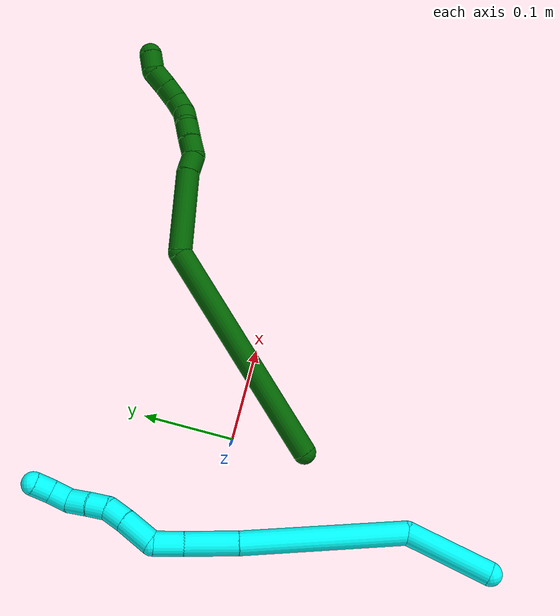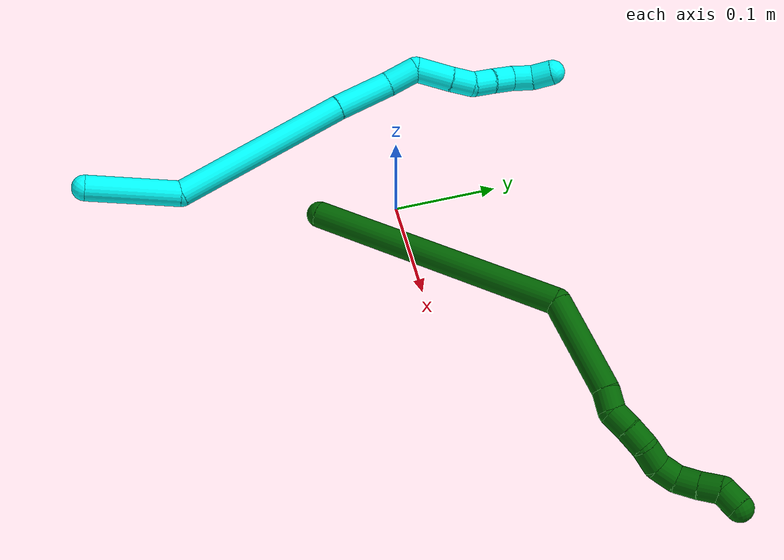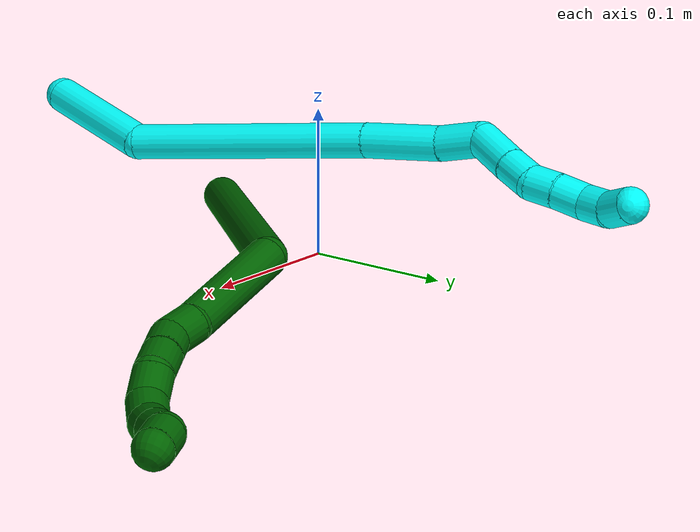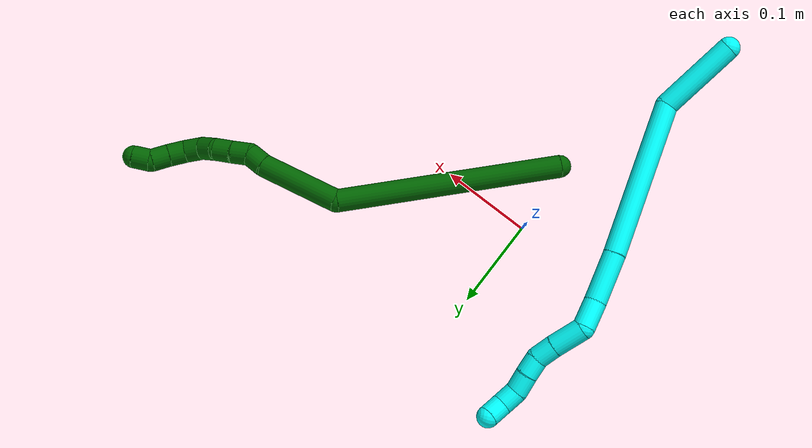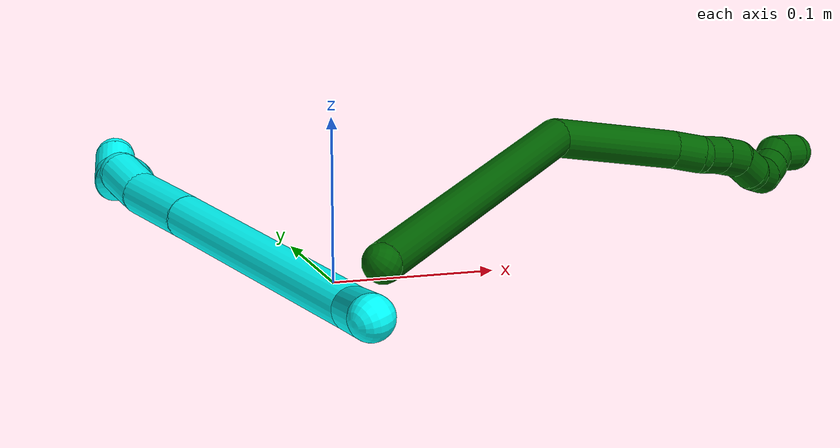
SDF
<sdf version="1.7">
 <world name="default">
  <model name="photoneo_s_sensor">
   <static>1</static>
   <pose>0 0 2 1.57079 1.57079 3.14159</pose>
   <link name="link">
    <inertial><mass>0.1</mass></inertial>
    <sensor name="sensor" type="depth">
     <update_rate>30</update_rate>
     <camera>
      <horizontal_fov>1.22</horizontal_fov>
      <image><width>1920</width><height>1200</height><format>B8G8R8</format></image>
      <clip><near>0.1</near><far>4</far></clip>
      <depth_camera><output>points</output></depth_camera>
     </camera>
     <plugin name="camera_plugin" filename="libgazebo_ros_depth_camera.so">
      <baseline>0.2</baseline>
      <alwaysOn>1</alwaysOn>
      <updateRate>0.0</updateRate>
      <cameraName>camera_ir</cameraName>
      <imageTopicName>/camera/color/image_raw</imageTopicName>
      <cameraInfoTopicName>/camera/color/camera_info</cameraInfoTopicName>
      <depthImageTopicName>/camera/depth/image_raw</depthImageTopicName>
      <depthImageCameraInfoTopicName>/camera/depth/camera_info</depthImageCameraInfoTopicName>
      <pointCloudTopicName>/camera/depth/points</pointCloudTopicName>
      <frameName>fr_optical</frameName>
      <pointCloudCutoff>0.1</pointCloudCutoff>
      <pointCloudCutoffMax>2.0</pointCloudCutoffMax>
      <distortionK1>0</distortionK1>
      <distortionK2>0</distortionK2>
      <distortionK3>0</distortionK3>
      <distortionT1>0</distortionT1>
      <distortionT2>0</distortionT2>
      <CxPrime>0</CxPrime>
      <Cx>0</Cx>
      <Cy>0</Cy>
      <focalLength>0</focalLength>
      <hackBaseline>0</hackBaseline>
     </plugin>
    </sensor>
   </link>
  </model>
  <model name="bin">
   <static>1</static>
   <link name="bottom">
    <collision name="collision-bottom">
     <pose>0 0 -0.01 0 -0 0</pose>
     <geometry><box><size>0.8 0.6 0.02</size></box></geometry>
     <surface>
      <friction><ode><mu>100</mu><mu2>100</mu2></ode></friction>
      <contact><collide_bitmask>65535</collide_bitmask></contact>
     </surface>
    </collision>
   </link>
   <link name="west_wall">
    <collision name="collision-west_wall">
     <pose>-0.41 0 0.1 0 -0 0</pose>
     <geometry><box><size>0.02 0.6 0.2</size></box></geometry>
     <surface>
      <friction><ode><mu>100</mu><mu2>100</mu2></ode></friction>
      <contact><collide_bitmask>65535</collide_bitmask></contact>
     </surface>
    </collision>
   </link>
   <link name="east_wall">
    <collision name="collision-east_wall">
     <pose>0.41 0 0.1 0 -0 0</pose>
     <geometry><box><size>0.02 0.6 0.2</size></box></geometry>
     <surface>
      <friction><ode><mu>100</mu><mu2>100</mu2></ode></friction>
      <contact><collide_bitmask>65535</collide_bitmask></contact>
     </surface>
    </collision>
   </link>
   <link name="south_wall">
    <collision name="collision-south_wall">
     <pose>0 -0.31 0.1 0 -0 0</pose>
     <geometry><box><size>0.8 0.02 0.2</size></box></geometry>
     <surface>
      <friction><ode><mu>100</mu><mu2>100</mu2></ode></friction>
      <contact><collide_bitmask>65535</collide_bitmask></contact>
     </surface>
    </collision>
   </link>
   <link name="north_wall">
    <collision name="collision-north_wall">
     <pose>0 0.31 0.1 0 -0 0</pose>
     <geometry><box><size>0.8 0.02 0.2</size></box></geometry>
     <surface>
      <friction><ode><mu>100</mu><mu2>100</mu2></ode></friction>
      <contact><collide_bitmask>65535</collide_bitmask></contact>
     </surface>
    </collision>
   </link>
  </model>
  <model name="3">
   <static>0</static>
   <link name="3">
    <collision name="collision-cylinder-e_1_1_4">
     <pose>-0.007428 0.038695 0.022287 -1.04824 -0.164834 0.095426</pose>
     <geometry><cylinder><radius>0.0125</radius><length>0.090535</length></cylinder></geometry>
     <surface>
      <friction><ode><mu>1.16</mu><mu2>1.16</mu2><slip1>0</slip1><slip2>0</slip2></ode></friction>
      <contact><ode><kp>1e+06</kp><kd>1</kd><max_vel>0</max_vel><min_depth>0.001</min_depth></ode></contact>
     </surface>
    </collision>
    <visual name="visual-cylinder-e_1_1_4">
     <pose>-0.007428 0.038695 0.022287 -1.04824 -0.164834 0.095426</pose>
     <geometry><cylinder><radius>0.0125</radius><length>0.090535</length></cylinder></geometry>
     <material><ambient>0.003922 1 0.996078 1</ambient></material>
    </visual>
    <collision name="collision-cylinder-e_2_4_5">
     <pose>-0.06705 0.14703 0.05719 -1.39156 -0.63544 0.536049</pose>
     <geometry><cylinder><radius>0.0125</radius><length>0.175878</length></cylinder></geometry>
     <surface>
      <friction><ode><mu>1.16</mu><mu2>1.16</mu2><slip1>0</slip1><slip2>0</slip2></ode></friction>
      <contact><ode><kp>1e+06</kp><kd>1</kd><max_vel>0</max_vel><min_depth>0.001</min_depth></ode></contact>
     </surface>
    </collision>
    <visual name="visual-cylinder-e_2_4_5">
     <pose>-0.06705 0.14703 0.05719 -1.39156 -0.63544 0.536049</pose>
     <geometry><cylinder><radius>0.0125</radius><length>0.175878</length></cylinder></geometry>
     <material><ambient>0.003922 1 0.996078 1</ambient></material>
    </visual>
    <collision name="collision-cylinder-e_3_5_6">
     <pose>-0.134782 0.239527 0.074822 -1.35485 -0.586134 0.476262</pose>
     <geometry><cylinder><radius>0.0125</radius><length>0.056177</length></cylinder></geometry>
     <surface>
      <friction><ode><mu>1.16</mu><mu2>1.16</mu2><slip1>0</slip1><slip2>0</slip2></ode></friction>
      <contact><ode><kp>1e+06</kp><kd>1</kd><max_vel>0</max_vel><min_depth>0.001</min_depth></ode></contact>
     </surface>
    </collision>
    <visual name="visual-cylinder-e_3_5_6">
     <pose>-0.134782 0.239527 0.074822 -1.35485 -0.586134 0.476262</pose>
     <geometry><cylinder><radius>0.0125</radius><length>0.056177</length></cylinder></geometry>
     <material><ambient>0.003922 1 0.996078 1</ambient></material>
    </visual>
    <collision name="collision-cylinder-e_4_6_7">
     <pose>-0.160645 0.273797 0.083875 -1.23059 -0.706157 0.509636</pose>
     <geometry><cylinder><radius>0.0125</radius><length>0.031825</length></cylinder></geometry>
     <surface>
      <friction><ode><mu>1.16</mu><mu2>1.16</mu2><slip1>0</slip1><slip2>0</slip2></ode></friction>
      <contact><ode><kp>1e+06</kp><kd>1</kd><max_vel>0</max_vel><min_depth>0.001</min_depth></ode></contact>
     </surface>
    </collision>
    <visual name="visual-cylinder-e_4_6_7">
     <pose>-0.160645 0.273797 0.083875 -1.23059 -0.706157 0.509636</pose>
     <geometry><cylinder><radius>0.0125</radius><length>0.031825</length></cylinder></geometry>
     <material><ambient>0.003922 1 0.996078 1</ambient></material>
    </visual>
    <collision name="collision-cylinder-e_5_7_8">
     <pose>-0.170985 0.30006 0.098774 -0.939409 -0.00076 0.000386</pose>
     <geometry><cylinder><radius>0.0125</radius><length>0.036792</length></cylinder></geometry>
     <surface>
      <friction><ode><mu>1.16</mu><mu2>1.16</mu2><slip1>0</slip1><slip2>0</slip2></ode></friction>
      <contact><ode><kp>1e+06</kp><kd>1</kd><max_vel>0</max_vel><min_depth>0.001</min_depth></ode></contact>
     </surface>
    </collision>
    <visual name="visual-cylinder-e_5_7_8">
     <pose>-0.170985 0.30006 0.098774 -0.939409 -0.00076 0.000386</pose>
     <geometry><cylinder><radius>0.0125</radius><length>0.036792</length></cylinder></geometry>
     <material><ambient>0.003922 1 0.996078 1</ambient></material>
    </visual>
    <collision name="collision-cylinder-e_6_8_9">
     <pose>-0.171348 0.324691 0.116018 -0.992436 -0.029901 0.016189</pose>
     <geometry><cylinder><radius>0.0125</radius><length>0.023374</length></cylinder></geometry>
     <surface>
      <friction><ode><mu>1.16</mu><mu2>1.16</mu2><slip1>0</slip1><slip2>0</slip2></ode></friction>
      <contact><ode><kp>1e+06</kp><kd>1</kd><max_vel>0</max_vel><min_depth>0.001</min_depth></ode></contact>
     </surface>
    </collision>
    <visual name="visual-cylinder-e_6_8_9">
     <pose>-0.171348 0.324691 0.116018 -0.992436 -0.029901 0.016189</pose>
     <geometry><cylinder><radius>0.0125</radius><length>0.023374</length></cylinder></geometry>
     <material><ambient>0.003922 1 0.996078 1</ambient></material>
    </visual>
    <collision name="collision-cylinder-e_7_9_10">
     <pose>-0.175128 0.343938 0.125511 -1.25363 -0.331617 0.241221</pose>
     <geometry><cylinder><radius>0.0125</radius><length>0.021073</length></cylinder></geometry>
     <surface>
      <friction><ode><mu>1.16</mu><mu2>1.16</mu2><slip1>0</slip1><slip2>0</slip2></ode></friction>
      <contact><ode><kp>1e+06</kp><kd>1</kd><max_vel>0</max_vel><min_depth>0.001</min_depth></ode></contact>
     </surface>
    </collision>
    <visual name="visual-cylinder-e_7_9_10">
     <pose>-0.175128 0.343938 0.125511 -1.25363 -0.331617 0.241221</pose>
     <geometry><cylinder><radius>0.0125</radius><length>0.021073</length></cylinder></geometry>
     <material><ambient>0.003922 1 0.996078 1</ambient></material>
    </visual>
    <collision name="collision-cylinder-e_8_10_11">
     <pose>-0.181498 0.363707 0.131159 -1.32906 -0.270271 0.212224</pose>
     <geometry><cylinder><radius>0.0125</radius><length>0.022024</length></cylinder></geometry>
     <surface>
      <friction><ode><mu>1.16</mu><mu2>1.16</mu2><slip1>0</slip1><slip2>0</slip2></ode></friction>
      <contact><ode><kp>1e+06</kp><kd>1</kd><max_vel>0</max_vel><min_depth>0.001</min_depth></ode></contact>
     </surface>
    </collision>
    <visual name="visual-cylinder-e_8_10_11">
     <pose>-0.181498 0.363707 0.131159 -1.32906 -0.270271 0.212224</pose>
     <geometry><cylinder><radius>0.0125</radius><length>0.022024</length></cylinder></geometry>
     <material><ambient>0.003922 1 0.996078 1</ambient></material>
    </visual>
    <collision name="collision-cylinder-e_9_11_12">
     <pose>-0.187829 0.382152 0.139687 -0.936641 -0.323717 0.164825</pose>
     <geometry><cylinder><radius>0.0125</radius><length>0.02132</length></cylinder></geometry>
     <surface>
      <friction><ode><mu>1.16</mu><mu2>1.16</mu2><slip1>0</slip1><slip2>0</slip2></ode></friction>
      <contact><ode><kp>1e+06</kp><kd>1</kd><max_vel>0</max_vel><min_depth>0.001</min_depth></ode></contact>
     </surface>
    </collision>
    <visual name="visual-cylinder-e_9_11_12">
     <pose>-0.187829 0.382152 0.139687 -0.936641 -0.323717 0.164825</pose>
     <geometry><cylinder><radius>0.0125</radius><length>0.02132</length></cylinder></geometry>
     <material><ambient>0.003922 1 0.996078 1</ambient></material>
    </visual>
    <collision name="collision-cylinder-e_10_12_2">
     <pose>-0.197319 0.395695 0.152301 -0.683987 -0.619748 0.226983</pose>
     <geometry><cylinder><radius>0.0125</radius><length>0.021003</length></cylinder></geometry>
     <surface>
      <friction><ode><mu>1.16</mu><mu2>1.16</mu2><slip1>0</slip1><slip2>0</slip2></ode></friction>
      <contact><ode><kp>1e+06</kp><kd>1</kd><max_vel>0</max_vel><min_depth>0.001</min_depth></ode></contact>
     </surface>
    </collision>
    <visual name="visual-cylinder-e_10_12_2">
     <pose>-0.197319 0.395695 0.152301 -0.683987 -0.619748 0.226983</pose>
     <geometry><cylinder><radius>0.0125</radius><length>0.021003</length></cylinder></geometry>
     <material><ambient>0.003922 1 0.996078 1</ambient></material>
    </visual>
    <collision name="collision-sphere-2">
     <pose>-0.203419 0.401097 0.158926 0 -0 0</pose>
     <geometry><sphere><radius>0.0125</radius></sphere></geometry>
     <surface>
      <friction><ode><mu>1.16</mu><mu2>1.16</mu2><slip1>0</slip1><slip2>0</slip2></ode></friction>
      <contact><ode><kp>1e+06</kp><kd>1</kd><max_vel>0</max_vel><min_depth>0.001</min_depth></ode></contact>
     </surface>
    </collision>
    <visual name="visual-sphere-2">
     <pose>-0.203419 0.401097 0.158926 0 -0 0</pose>
     <geometry><sphere><radius>0.0125</radius></sphere></geometry>
     <material><ambient>0.003922 1 0.996078 1</ambient></material>
    </visual>
    <collision name="collision-sphere-12">
     <pose>-0.19122 0.390293 0.145675 0 -0 0</pose>
     <geometry><sphere><radius>0.0125</radius></sphere></geometry>
     <surface>
      <friction><ode><mu>1.16</mu><mu2>1.16</mu2><slip1>0</slip1><slip2>0</slip2></ode></friction>
      <contact><ode><kp>1e+06</kp><kd>1</kd><max_vel>0</max_vel><min_depth>0.001</min_depth></ode></contact>
     </surface>
    </collision>
    <visual name="visual-sphere-12">
     <pose>-0.19122 0.390293 0.145675 0 -0 0</pose>
     <geometry><sphere><radius>0.0125</radius></sphere></geometry>
     <material><ambient>0.003922 1 0.996078 1</ambient></material>
    </visual>
    <collision name="collision-sphere-11">
     <pose>-0.184438 0.374011 0.133699 0 -0 0</pose>
     <geometry><sphere><radius>0.0125</radius></sphere></geometry>
     <surface>
      <friction><ode><mu>1.16</mu><mu2>1.16</mu2><slip1>0</slip1><slip2>0</slip2></ode></friction>
      <contact><ode><kp>1e+06</kp><kd>1</kd><max_vel>0</max_vel><min_depth>0.001</min_depth></ode></contact>
     </surface>
    </collision>
    <visual name="visual-sphere-11">
     <pose>-0.184438 0.374011 0.133699 0 -0 0</pose>
     <geometry><sphere><radius>0.0125</radius></sphere></geometry>
     <material><ambient>0.003922 1 0.996078 1</ambient></material>
    </visual>
    <collision name="collision-sphere-10">
     <pose>-0.178558 0.353404 0.128618 0 -0 0</pose>
     <geometry><sphere><radius>0.0125</radius></sphere></geometry>
     <surface>
      <friction><ode><mu>1.16</mu><mu2>1.16</mu2><slip1>0</slip1><slip2>0</slip2></ode></friction>
      <contact><ode><kp>1e+06</kp><kd>1</kd><max_vel>0</max_vel><min_depth>0.001</min_depth></ode></contact>
     </surface>
    </collision>
    <visual name="visual-sphere-10">
     <pose>-0.178558 0.353404 0.128618 0 -0 0</pose>
     <geometry><sphere><radius>0.0125</radius></sphere></geometry>
     <material><ambient>0.003922 1 0.996078 1</ambient></material>
    </visual>
    <collision name="collision-sphere-9">
     <pose>-0.171697 0.334473 0.122404 0 -0 0</pose>
     <geometry><sphere><radius>0.0125</radius></sphere></geometry>
     <surface>
      <friction><ode><mu>1.16</mu><mu2>1.16</mu2><slip1>0</slip1><slip2>0</slip2></ode></friction>
      <contact><ode><kp>1e+06</kp><kd>1</kd><max_vel>0</max_vel><min_depth>0.001</min_depth></ode></contact>
     </surface>
    </collision>
    <visual name="visual-sphere-9">
     <pose>-0.171697 0.334473 0.122404 0 -0 0</pose>
     <geometry><sphere><radius>0.0125</radius></sphere></geometry>
     <material><ambient>0.003922 1 0.996078 1</ambient></material>
    </visual>
    <collision name="collision-sphere-4">
     <pose>-0.014856 0.07739 0.044573 0 -0 0</pose>
     <geometry><sphere><radius>0.0125</radius></sphere></geometry>
     <surface>
      <friction><ode><mu>1.16</mu><mu2>1.16</mu2><slip1>0</slip1><slip2>0</slip2></ode></friction>
      <contact><ode><kp>1e+06</kp><kd>1</kd><max_vel>0</max_vel><min_depth>0.001</min_depth></ode></contact>
     </surface>
    </collision>
    <visual name="visual-sphere-4">
     <pose>-0.014856 0.07739 0.044573 0 -0 0</pose>
     <geometry><sphere><radius>0.0125</radius></sphere></geometry>
     <material><ambient>0.003922 1 0.996078 1</ambient></material>
    </visual>
    <collision name="collision-sphere-1">
     <geometry><sphere><radius>0.0125</radius></sphere></geometry>
     <surface>
      <friction><ode><mu>1.16</mu><mu2>1.16</mu2><slip1>0</slip1><slip2>0</slip2></ode></friction>
      <contact><ode><kp>1e+06</kp><kd>1</kd><max_vel>0</max_vel><min_depth>0.001</min_depth></ode></contact>
     </surface>
    </collision>
    <visual name="visual-sphere-1">
     <geometry><sphere><radius>0.0125</radius></sphere></geometry>
     <material><ambient>0.003922 1 0.996078 1</ambient></material>
    </visual>
    <collision name="collision-sphere-8">
     <pose>-0.170999 0.314909 0.109632 0 -0 0</pose>
     <geometry><sphere><radius>0.0125</radius></sphere></geometry>
     <surface>
      <friction><ode><mu>1.16</mu><mu2>1.16</mu2><slip1>0</slip1><slip2>0</slip2></ode></friction>
      <contact><ode><kp>1e+06</kp><kd>1</kd><max_vel>0</max_vel><min_depth>0.001</min_depth></ode></contact>
     </surface>
    </collision>
    <visual name="visual-sphere-8">
     <pose>-0.170999 0.314909 0.109632 0 -0 0</pose>
     <geometry><sphere><radius>0.0125</radius></sphere></geometry>
     <material><ambient>0.003922 1 0.996078 1</ambient></material>
    </visual>
    <collision name="collision-sphere-5">
     <pose>-0.119245 0.21667 0.069808 0 -0 0</pose>
     <geometry><sphere><radius>0.0125</radius></sphere></geometry>
     <surface>
      <friction><ode><mu>1.16</mu><mu2>1.16</mu2><slip1>0</slip1><slip2>0</slip2></ode></friction>
      <contact><ode><kp>1e+06</kp><kd>1</kd><max_vel>0</max_vel><min_depth>0.001</min_depth></ode></contact>
     </surface>
    </collision>
    <visual name="visual-sphere-5">
     <pose>-0.119245 0.21667 0.069808 0 -0 0</pose>
     <geometry><sphere><radius>0.0125</radius></sphere></geometry>
     <material><ambient>0.003922 1 0.996078 1</ambient></material>
    </visual>
    <collision name="collision-sphere-6">
     <pose>-0.150319 0.262384 0.079835 0 -0 0</pose>
     <geometry><sphere><radius>0.0125</radius></sphere></geometry>
     <surface>
      <friction><ode><mu>1.16</mu><mu2>1.16</mu2><slip1>0</slip1><slip2>0</slip2></ode></friction>
      <contact><ode><kp>1e+06</kp><kd>1</kd><max_vel>0</max_vel><min_depth>0.001</min_depth></ode></contact>
     </surface>
    </collision>
    <visual name="visual-sphere-6">
     <pose>-0.150319 0.262384 0.079835 0 -0 0</pose>
     <geometry><sphere><radius>0.0125</radius></sphere></geometry>
     <material><ambient>0.003922 1 0.996078 1</ambient></material>
    </visual>
    <collision name="collision-sphere-7">
     <pose>-0.170971 0.28521 0.087916 0 -0 0</pose>
     <geometry><sphere><radius>0.0125</radius></sphere></geometry>
     <surface>
      <friction><ode><mu>1.16</mu><mu2>1.16</mu2><slip1>0</slip1><slip2>0</slip2></ode></friction>
      <contact><ode><kp>1e+06</kp><kd>1</kd><max_vel>0</max_vel><min_depth>0.001</min_depth></ode></contact>
     </surface>
    </collision>
    <visual name="visual-sphere-7">
     <pose>-0.170971 0.28521 0.087916 0 -0 0</pose>
     <geometry><sphere><radius>0.0125</radius></sphere></geometry>
     <material><ambient>0.003922 1 0.996078 1</ambient></material>
    </visual>
    <inertial>
     <pose>-0.102563 0.203754 0.07401 0 -0 0</pose>
     <mass>0.5</mass>
     <inertia>
      <ixx>0.0006</ixx>
      <ixy>0</ixy>
      <ixz>0</ixz>
      <iyy>0.000495</iyy>
      <iyz>0</iyz>
      <izz>-0.000138</izz>
     </inertia>
    </inertial>
   </link>
   <pose>-0.059046 -0.28848 0.0546 -1.15369 0.955125 -0.797108</pose>
  </model>
  <model name="6">
   <static>0</static>
   <link name="6">
    <collision name="collision-cylinder-e_1_1_4">
     <pose>0.079461 0.060583 0.073463 -0.689604 0.69542 -0.258881</pose>
     <geometry><cylinder><radius>0.0125</radius><length>0.248041</length></cylinder></geometry>
     <surface>
      <friction><ode><mu>1.16</mu><mu2>1.16</mu2><slip1>0</slip1><slip2>0</slip2></ode></friction>
      <contact><ode><kp>1e+06</kp><kd>1</kd><max_vel>0</max_vel><min_depth>0.001</min_depth></ode></contact>
     </surface>
    </collision>
    <visual name="visual-cylinder-e_1_1_4">
     <pose>0.079461 0.060583 0.073463 -0.689604 0.69542 -0.258881</pose>
     <geometry><cylinder><radius>0.0125</radius><length>0.248041</length></cylinder></geometry>
     <material><ambient>0 0.392157 0.003922 1</ambient></material>
    </visual>
    <collision name="collision-cylinder-e_2_4_5">
     <pose>0.160401 0.141549 0.187621 -0.464354 0.032497 -0.007684</pose>
     <geometry><cylinder><radius>0.0125</radius><length>0.091079</length></cylinder></geometry>
     <surface>
      <friction><ode><mu>1.16</mu><mu2>1.16</mu2><slip1>0</slip1><slip2>0</slip2></ode></friction>
      <contact><ode><kp>1e+06</kp><kd>1</kd><max_vel>0</max_vel><min_depth>0.001</min_depth></ode></contact>
     </surface>
    </collision>
    <visual name="visual-cylinder-e_2_4_5">
     <pose>0.160401 0.141549 0.187621 -0.464354 0.032497 -0.007684</pose>
     <geometry><cylinder><radius>0.0125</radius><length>0.091079</length></cylinder></geometry>
     <material><ambient>0 0.392157 0.003922 1</ambient></material>
    </visual>
    <collision name="collision-cylinder-e_3_5_6">
     <pose>0.159988 0.166368 0.23738 -0.455052 -0.18547 0.04306</pose>
     <geometry><cylinder><radius>0.0125</radius><length>0.020532</length></cylinder></geometry>
     <surface>
      <friction><ode><mu>1.16</mu><mu2>1.16</mu2><slip1>0</slip1><slip2>0</slip2></ode></friction>
      <contact><ode><kp>1e+06</kp><kd>1</kd><max_vel>0</max_vel><min_depth>0.001</min_depth></ode></contact>
     </surface>
    </collision>
    <visual name="visual-cylinder-e_3_5_6">
     <pose>0.159988 0.166368 0.23738 -0.455052 -0.18547 0.04306</pose>
     <geometry><cylinder><radius>0.0125</radius><length>0.020532</length></cylinder></geometry>
     <material><ambient>0 0.392157 0.003922 1</ambient></material>
    </visual>
    <collision name="collision-cylinder-e_4_6_7">
     <pose>0.1614 0.174682 0.255103 -0.421242 0.33514 -0.072297</pose>
     <geometry><cylinder><radius>0.0125</radius><length>0.020096</length></cylinder></geometry>
     <surface>
      <friction><ode><mu>1.16</mu><mu2>1.16</mu2><slip1>0</slip1><slip2>0</slip2></ode></friction>
      <contact><ode><kp>1e+06</kp><kd>1</kd><max_vel>0</max_vel><min_depth>0.001</min_depth></ode></contact>
     </surface>
    </collision>
    <visual name="visual-cylinder-e_4_6_7">
     <pose>0.1614 0.174682 0.255103 -0.421242 0.33514 -0.072297</pose>
     <geometry><cylinder><radius>0.0125</radius><length>0.020096</length></cylinder></geometry>
     <material><ambient>0 0.392157 0.003922 1</ambient></material>
    </visual>
    <collision name="collision-cylinder-e_5_7_8">
     <pose>0.167528 0.181786 0.27282 -0.341977 0.285648 -0.049652</pose>
     <geometry><cylinder><radius>0.0125</radius><length>0.020041</length></cylinder></geometry>
     <surface>
      <friction><ode><mu>1.16</mu><mu2>1.16</mu2><slip1>0</slip1><slip2>0</slip2></ode></friction>
      <contact><ode><kp>1e+06</kp><kd>1</kd><max_vel>0</max_vel><min_depth>0.001</min_depth></ode></contact>
     </surface>
    </collision>
    <visual name="visual-cylinder-e_5_7_8">
     <pose>0.167528 0.181786 0.27282 -0.341977 0.285648 -0.049652</pose>
     <geometry><cylinder><radius>0.0125</radius><length>0.020041</length></cylinder></geometry>
     <material><ambient>0 0.392157 0.003922 1</ambient></material>
    </visual>
    <collision name="collision-cylinder-e_6_8_9">
     <pose>0.172415 0.184735 0.291732 0.027958 0.206312 0.002894</pose>
     <geometry><cylinder><radius>0.0125</radius><length>0.020142</length></cylinder></geometry>
     <surface>
      <friction><ode><mu>1.16</mu><mu2>1.16</mu2><slip1>0</slip1><slip2>0</slip2></ode></friction>
      <contact><ode><kp>1e+06</kp><kd>1</kd><max_vel>0</max_vel><min_depth>0.001</min_depth></ode></contact>
     </surface>
    </collision>
    <visual name="visual-cylinder-e_6_8_9">
     <pose>0.172415 0.184735 0.291732 0.027958 0.206312 0.002894</pose>
     <geometry><cylinder><radius>0.0125</radius><length>0.020142</length></cylinder></geometry>
     <material><ambient>0 0.392157 0.003922 1</ambient></material>
    </visual>
    <collision name="collision-cylinder-e_7_9_10">
     <pose>0.179894 0.186171 0.309842 -0.204366 0.570936 -0.060169</pose>
     <geometry><cylinder><radius>0.0125</radius><length>0.020043</length></cylinder></geometry>
     <surface>
      <friction><ode><mu>1.16</mu><mu2>1.16</mu2><slip1>0</slip1><slip2>0</slip2></ode></friction>
      <contact><ode><kp>1e+06</kp><kd>1</kd><max_vel>0</max_vel><min_depth>0.001</min_depth></ode></contact>
     </surface>
    </collision>
    <visual name="visual-cylinder-e_7_9_10">
     <pose>0.179894 0.186171 0.309842 -0.204366 0.570936 -0.060169</pose>
     <geometry><cylinder><radius>0.0125</radius><length>0.020043</length></cylinder></geometry>
     <material><ambient>0 0.392157 0.003922 1</ambient></material>
    </visual>
    <collision name="collision-cylinder-e_8_10_11">
     <pose>0.192416 0.192553 0.323365 -0.725552 0.790072 -0.313927</pose>
     <geometry><cylinder><radius>0.0125</radius><length>0.020005</length></cylinder></geometry>
     <surface>
      <friction><ode><mu>1.16</mu><mu2>1.16</mu2><slip1>0</slip1><slip2>0</slip2></ode></friction>
      <contact><ode><kp>1e+06</kp><kd>1</kd><max_vel>0</max_vel><min_depth>0.001</min_depth></ode></contact>
     </surface>
    </collision>
    <visual name="visual-cylinder-e_8_10_11">
     <pose>0.192416 0.192553 0.323365 -0.725552 0.790072 -0.313927</pose>
     <geometry><cylinder><radius>0.0125</radius><length>0.020005</length></cylinder></geometry>
     <material><ambient>0 0.392157 0.003922 1</ambient></material>
    </visual>
    <collision name="collision-cylinder-e_9_11_12">
     <pose>0.207068 0.202098 0.33303 -0.836659 0.854871 -0.399617</pose>
     <geometry><cylinder><radius>0.0125</radius><length>0.020005</length></cylinder></geometry>
     <surface>
      <friction><ode><mu>1.16</mu><mu2>1.16</mu2><slip1>0</slip1><slip2>0</slip2></ode></friction>
      <contact><ode><kp>1e+06</kp><kd>1</kd><max_vel>0</max_vel><min_depth>0.001</min_depth></ode></contact>
     </surface>
    </collision>
    <visual name="visual-cylinder-e_9_11_12">
     <pose>0.207068 0.202098 0.33303 -0.836659 0.854871 -0.399617</pose>
     <geometry><cylinder><radius>0.0125</radius><length>0.020005</length></cylinder></geometry>
     <material><ambient>0 0.392157 0.003922 1</ambient></material>
    </visual>
    <collision name="collision-cylinder-e_10_12_2">
     <pose>0.217406 0.211781 0.345749 -0.524013 0.28263 -0.076265</pose>
     <geometry><cylinder><radius>0.0125</radius><length>0.020016</length></cylinder></geometry>
     <surface>
      <friction><ode><mu>1.16</mu><mu2>1.16</mu2><slip1>0</slip1><slip2>0</slip2></ode></friction>
      <contact><ode><kp>1e+06</kp><kd>1</kd><max_vel>0</max_vel><min_depth>0.001</min_depth></ode></contact>
     </surface>
    </collision>
    <visual name="visual-cylinder-e_10_12_2">
     <pose>0.217406 0.211781 0.345749 -0.524013 0.28263 -0.076265</pose>
     <geometry><cylinder><radius>0.0125</radius><length>0.020016</length></cylinder></geometry>
     <material><ambient>0 0.392157 0.003922 1</ambient></material>
    </visual>
    <collision name="collision-sphere-2">
     <pose>0.220197 0.21659 0.35407 0 -0 0</pose>
     <geometry><sphere><radius>0.0125</radius></sphere></geometry>
     <surface>
      <friction><ode><mu>1.16</mu><mu2>1.16</mu2><slip1>0</slip1><slip2>0</slip2></ode></friction>
      <contact><ode><kp>1e+06</kp><kd>1</kd><max_vel>0</max_vel><min_depth>0.001</min_depth></ode></contact>
     </surface>
    </collision>
    <visual name="visual-sphere-2">
     <pose>0.220197 0.21659 0.35407 0 -0 0</pose>
     <geometry><sphere><radius>0.0125</radius></sphere></geometry>
     <material><ambient>0 0.392157 0.003922 1</ambient></material>
    </visual>
    <collision name="collision-sphere-12">
     <pose>0.214615 0.206972 0.337428 0 -0 0</pose>
     <geometry><sphere><radius>0.0125</radius></sphere></geometry>
     <surface>
      <friction><ode><mu>1.16</mu><mu2>1.16</mu2><slip1>0</slip1><slip2>0</slip2></ode></friction>
      <contact><ode><kp>1e+06</kp><kd>1</kd><max_vel>0</max_vel><min_depth>0.001</min_depth></ode></contact>
     </surface>
    </collision>
    <visual name="visual-sphere-12">
     <pose>0.214615 0.206972 0.337428 0 -0 0</pose>
     <geometry><sphere><radius>0.0125</radius></sphere></geometry>
     <material><ambient>0 0.392157 0.003922 1</ambient></material>
    </visual>
    <collision name="collision-sphere-11">
     <pose>0.199521 0.197225 0.328632 0 -0 0</pose>
     <geometry><sphere><radius>0.0125</radius></sphere></geometry>
     <surface>
      <friction><ode><mu>1.16</mu><mu2>1.16</mu2><slip1>0</slip1><slip2>0</slip2></ode></friction>
      <contact><ode><kp>1e+06</kp><kd>1</kd><max_vel>0</max_vel><min_depth>0.001</min_depth></ode></contact>
     </surface>
    </collision>
    <visual name="visual-sphere-11">
     <pose>0.199521 0.197225 0.328632 0 -0 0</pose>
     <geometry><sphere><radius>0.0125</radius></sphere></geometry>
     <material><ambient>0 0.392157 0.003922 1</ambient></material>
    </visual>
    <collision name="collision-sphere-10">
     <pose>0.18531 0.187882 0.318098 0 -0 0</pose>
     <geometry><sphere><radius>0.0125</radius></sphere></geometry>
     <surface>
      <friction><ode><mu>1.16</mu><mu2>1.16</mu2><slip1>0</slip1><slip2>0</slip2></ode></friction>
      <contact><ode><kp>1e+06</kp><kd>1</kd><max_vel>0</max_vel><min_depth>0.001</min_depth></ode></contact>
     </surface>
    </collision>
    <visual name="visual-sphere-10">
     <pose>0.18531 0.187882 0.318098 0 -0 0</pose>
     <geometry><sphere><radius>0.0125</radius></sphere></geometry>
     <material><ambient>0 0.392157 0.003922 1</ambient></material>
    </visual>
    <collision name="collision-sphere-9">
     <pose>0.174478 0.18446 0.301585 0 -0 0</pose>
     <geometry><sphere><radius>0.0125</radius></sphere></geometry>
     <surface>
      <friction><ode><mu>1.16</mu><mu2>1.16</mu2><slip1>0</slip1><slip2>0</slip2></ode></friction>
      <contact><ode><kp>1e+06</kp><kd>1</kd><max_vel>0</max_vel><min_depth>0.001</min_depth></ode></contact>
     </surface>
    </collision>
    <visual name="visual-sphere-9">
     <pose>0.174478 0.18446 0.301585 0 -0 0</pose>
     <geometry><sphere><radius>0.0125</radius></sphere></geometry>
     <material><ambient>0 0.392157 0.003922 1</ambient></material>
    </visual>
    <collision name="collision-sphere-4">
     <pose>0.158922 0.121165 0.146925 0 -0 0</pose>
     <geometry><sphere><radius>0.0125</radius></sphere></geometry>
     <surface>
      <friction><ode><mu>1.16</mu><mu2>1.16</mu2><slip1>0</slip1><slip2>0</slip2></ode></friction>
      <contact><ode><kp>1e+06</kp><kd>1</kd><max_vel>0</max_vel><min_depth>0.001</min_depth></ode></contact>
     </surface>
    </collision>
    <visual name="visual-sphere-4">
     <pose>0.158922 0.121165 0.146925 0 -0 0</pose>
     <geometry><sphere><radius>0.0125</radius></sphere></geometry>
     <material><ambient>0 0.392157 0.003922 1</ambient></material>
    </visual>
    <collision name="collision-sphere-1">
     <geometry><sphere><radius>0.0125</radius></sphere></geometry>
     <surface>
      <friction><ode><mu>1.16</mu><mu2>1.16</mu2><slip1>0</slip1><slip2>0</slip2></ode></friction>
      <contact><ode><kp>1e+06</kp><kd>1</kd><max_vel>0</max_vel><min_depth>0.001</min_depth></ode></contact>
     </surface>
    </collision>
    <visual name="visual-sphere-1">
     <geometry><sphere><radius>0.0125</radius></sphere></geometry>
     <material><ambient>0 0.392157 0.003922 1</ambient></material>
    </visual>
    <collision name="collision-sphere-8">
     <pose>0.170352 0.185011 0.281878 0 -0 0</pose>
     <geometry><sphere><radius>0.0125</radius></sphere></geometry>
     <surface>
      <friction><ode><mu>1.16</mu><mu2>1.16</mu2><slip1>0</slip1><slip2>0</slip2></ode></friction>
      <contact><ode><kp>1e+06</kp><kd>1</kd><max_vel>0</max_vel><min_depth>0.001</min_depth></ode></contact>
     </surface>
    </collision>
    <visual name="visual-sphere-8">
     <pose>0.170352 0.185011 0.281878 0 -0 0</pose>
     <geometry><sphere><radius>0.0125</radius></sphere></geometry>
     <material><ambient>0 0.392157 0.003922 1</ambient></material>
    </visual>
    <collision name="collision-sphere-5">
     <pose>0.161881 0.161933 0.228317 0 -0 0</pose>
     <geometry><sphere><radius>0.0125</radius></sphere></geometry>
     <surface>
      <friction><ode><mu>1.16</mu><mu2>1.16</mu2><slip1>0</slip1><slip2>0</slip2></ode></friction>
      <contact><ode><kp>1e+06</kp><kd>1</kd><max_vel>0</max_vel><min_depth>0.001</min_depth></ode></contact>
     </surface>
    </collision>
    <visual name="visual-sphere-5">
     <pose>0.161881 0.161933 0.228317 0 -0 0</pose>
     <geometry><sphere><radius>0.0125</radius></sphere></geometry>
     <material><ambient>0 0.392157 0.003922 1</ambient></material>
    </visual>
    <collision name="collision-sphere-6">
     <pose>0.158095 0.170802 0.246443 0 -0 0</pose>
     <geometry><sphere><radius>0.0125</radius></sphere></geometry>
     <surface>
      <friction><ode><mu>1.16</mu><mu2>1.16</mu2><slip1>0</slip1><slip2>0</slip2></ode></friction>
      <contact><ode><kp>1e+06</kp><kd>1</kd><max_vel>0</max_vel><min_depth>0.001</min_depth></ode></contact>
     </surface>
    </collision>
    <visual name="visual-sphere-6">
     <pose>0.158095 0.170802 0.246443 0 -0 0</pose>
     <geometry><sphere><radius>0.0125</radius></sphere></geometry>
     <material><ambient>0 0.392157 0.003922 1</ambient></material>
    </visual>
    <collision name="collision-sphere-7">
     <pose>0.164705 0.178562 0.263762 0 -0 0</pose>
     <geometry><sphere><radius>0.0125</radius></sphere></geometry>
     <surface>
      <friction><ode><mu>1.16</mu><mu2>1.16</mu2><slip1>0</slip1><slip2>0</slip2></ode></friction>
      <contact><ode><kp>1e+06</kp><kd>1</kd><max_vel>0</max_vel><min_depth>0.001</min_depth></ode></contact>
     </surface>
    </collision>
    <visual name="visual-sphere-7">
     <pose>0.164705 0.178562 0.263762 0 -0 0</pose>
     <geometry><sphere><radius>0.0125</radius></sphere></geometry>
     <material><ambient>0 0.392157 0.003922 1</ambient></material>
    </visual>
    <inertial>
     <pose>0.127252 0.11615 0.165832 0 -0 0</pose>
     <mass>0.5</mass>
     <inertia>
      <ixx>0.000792</ixx>
      <ixy>0</ixy>
      <ixz>0</ixz>
      <iyy>0.000923</iyy>
      <iyz>0</iyz>
      <izz>-0.001459</izz>
     </inertia>
    </inertial>
   </link>
   <pose>0.00861 -0.077309 0.029142 2.22301 -0.139488 1.70242</pose>
  </model>
 </world>
</sdf>
